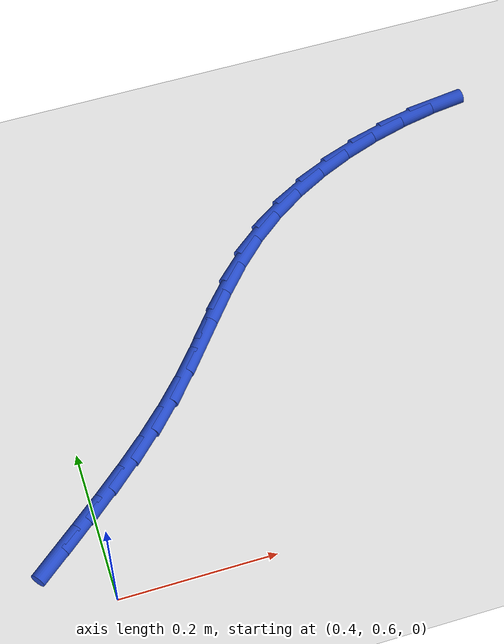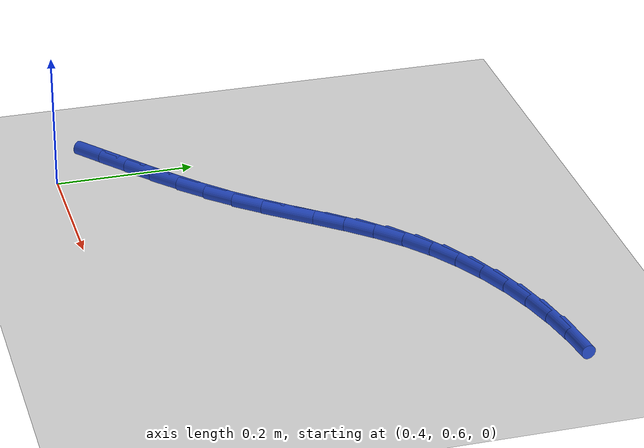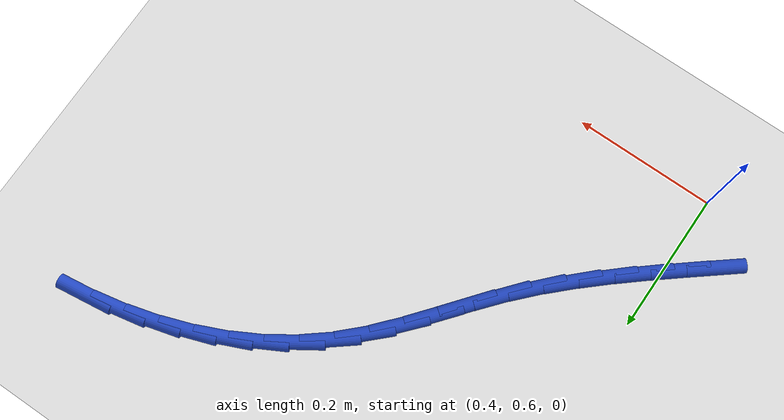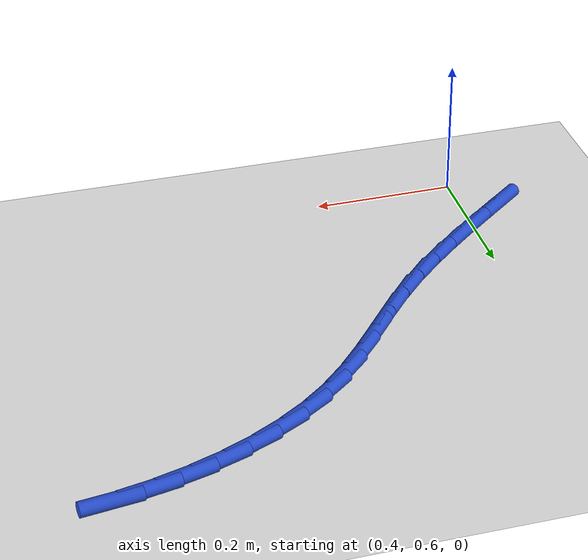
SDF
<sdf version="1.6">
 <world name="default">
  <model name="ground_plane">
   <static>1</static>
   <link name="link">
    <collision name="collision">
     <geometry><plane><normal>0 0 1</normal><size>100 100</size></plane></geometry>
     <surface><friction><ode><mu>100</mu><mu2>50</mu2></ode></friction></surface>
    </collision>
    <visual name="visual">
     <cast_shadows>0</cast_shadows>
     <geometry><plane><normal>0 0 1</normal><size>100 100</size></plane></geometry>
     <material>
      <script><uri>file://media/materials/scripts/gazebo.material</uri><name>Gazebo/WhiteGlow</name></script>
     </material>
    </visual>
   </link>
  </model>
  <model name="line">
   <link name="link_17">
    <pose>0.34552985644391854 0.6722691198165763 0.01 0 1.57 0.6773994261593566</pose>
    <collision name="collision">
     <geometry><cylinder><radius>0.01</radius><length>0.08</length></cylinder></geometry>
    </collision>
    <visual name="visual">
     <material>
      <script><name>Gazebo/Blue</name><uri>file://media/materials/scripts/gazebo.material</uri></script>
     </material>
     <geometry><cylinder><radius>0.01</radius><length>0.08</length></cylinder></geometry>
    </visual>
   </link>
   <link name="link_18">
    <pose>0.38276611238709046 0.7022208178290616 0.01 0 1.57 0.6858978935743995</pose>
    <collision name="collision">
     <geometry><cylinder><radius>0.01</radius><length>0.08</length></cylinder></geometry>
    </collision>
    <visual name="visual">
     <material>
      <script><name>Gazebo/Blue</name><uri>file://media/materials/scripts/gazebo.material</uri></script>
     </material>
     <geometry><cylinder><radius>0.01</radius><length>0.08</length></cylinder></geometry>
    </visual>
   </link>
   <link name="link_19">
    <pose>0.41977617609929113 0.7325121840714734 0.01 0 1.57 0.7045431374903761</pose>
    <collision name="collision">
     <geometry><cylinder><radius>0.01</radius><length>0.08</length></cylinder></geometry>
    </collision>
    <visual name="visual">
     <material>
      <script><name>Gazebo/Blue</name><uri>file://media/materials/scripts/gazebo.material</uri></script>
     </material>
     <geometry><cylinder><radius>0.01</radius><length>0.08</length></cylinder></geometry>
    </visual>
   </link>
   <link name="link_20">
    <pose>0.4561547266773468 0.7634370272215902 0.01 0 1.57 0.7335116303648233</pose>
    <collision name="collision">
     <geometry><cylinder><radius>0.01</radius><length>0.08</length></cylinder></geometry>
    </collision>
    <visual name="visual">
     <material>
      <script><name>Gazebo/Blue</name><uri>file://media/materials/scripts/gazebo.material</uri></script>
     </material>
     <geometry><cylinder><radius>0.01</radius><length>0.08</length></cylinder></geometry>
    </visual>
   </link>
   <link name="link_21">
    <pose>0.4914964432180841 0.7952891559571913 0.01 0 1.57 0.773060365631753</pose>
    <collision name="collision">
     <geometry><cylinder><radius>0.01</radius><length>0.08</length></cylinder></geometry>
    </collision>
    <visual name="visual">
     <material>
      <script><name>Gazebo/Blue</name><uri>file://media/materials/scripts/gazebo.material</uri></script>
     </material>
     <geometry><cylinder><radius>0.01</radius><length>0.08</length></cylinder></geometry>
    </visual>
   </link>
   <link name="link_22">
    <pose>0.5253960048183295 0.8283623789560559 0.01 0 1.57 0.8234040705962363</pose>
    <collision name="collision">
     <geometry><cylinder><radius>0.01</radius><length>0.08</length></cylinder></geometry>
    </collision>
    <visual name="visual">
     <material>
      <script><name>Gazebo/Blue</name><uri>file://media/materials/scripts/gazebo.material</uri></script>
     </material>
     <geometry><cylinder><radius>0.01</radius><length>0.08</length></cylinder></geometry>
    </visual>
   </link>
   <link name="link_23">
    <pose>0.5574492022800209 0.8629495232312983 0.01 0 1.57 0.873608936489605</pose>
    <collision name="collision">
     <geometry><cylinder><radius>0.01</radius><length>0.08</length></cylinder></geometry>
    </collision>
    <visual name="visual">
     <material>
      <script><name>Gazebo/Blue</name><uri>file://media/materials/scripts/gazebo.material</uri></script>
     </material>
     <geometry><cylinder><radius>0.01</radius><length>0.08</length></cylinder></geometry>
    </visual>
   </link>
   <link name="link_24">
    <pose>0.5876409893200333 0.8989997747724332 0.01 0 1.57 0.8963443819122033</pose>
    <collision name="collision">
     <geometry><cylinder><radius>0.01</radius><length>0.08</length></cylinder></geometry>
    </collision>
    <visual name="visual">
     <material>
      <script><name>Gazebo/Blue</name><uri>file://media/materials/scripts/gazebo.material</uri></script>
     </material>
     <geometry><cylinder><radius>0.01</radius><length>0.08</length></cylinder></geometry>
    </visual>
   </link>
   <link name="link_25">
    <pose>0.6169158458185611 0.9356150328921682 0.01 0 1.57 0.8872708833737211</pose>
    <collision name="collision">
     <geometry><cylinder><radius>0.01</radius><length>0.08</length></cylinder></geometry>
    </collision>
    <visual name="visual">
     <material>
      <script><name>Gazebo/Blue</name><uri>file://media/materials/scripts/gazebo.material</uri></script>
     </material>
     <geometry><cylinder><radius>0.01</radius><length>0.08</length></cylinder></geometry>
    </visual>
   </link>
   <link name="link_26">
    <pose>0.6463635143198141 0.9717689261748429 0.01 0 1.57 0.845834614131423</pose>
    <collision name="collision">
     <geometry><cylinder><radius>0.01</radius><length>0.08</length></cylinder></geometry>
    </collision>
    <visual name="visual">
     <material>
      <script><name>Gazebo/Blue</name><uri>file://media/materials/scripts/gazebo.material</uri></script>
     </material>
     <geometry><cylinder><radius>0.01</radius><length>0.08</length></cylinder></geometry>
    </visual>
   </link>
   <link name="link_27">
    <pose>0.6770737373680019 1.006435083204797 0.01 0 1.57 0.7714594543512581</pose>
    <collision name="collision">
     <geometry><cylinder><radius>0.01</radius><length>0.08</length></cylinder></geometry>
    </collision>
    <visual name="visual">
     <material>
      <script><name>Gazebo/Blue</name><uri>file://media/materials/scripts/gazebo.material</uri></script>
     </material>
     <geometry><cylinder><radius>0.01</radius><length>0.08</length></cylinder></geometry>
    </visual>
   </link>
   <link name="link_28">
    <pose>0.7101354433165653 1.0385877264404748 0.01 0 1.57 0.6742653255553979</pose>
    <collision name="collision">
     <geometry><cylinder><radius>0.01</radius><length>0.08</length></cylinder></geometry>
    </collision>
    <visual name="visual">
     <material>
      <script><name>Gazebo/Blue</name><uri>file://media/materials/scripts/gazebo.material</uri></script>
     </material>
     <geometry><cylinder><radius>0.01</radius><length>0.08</length></cylinder></geometry>
    </visual>
   </link>
   <link name="link_29">
    <pose>0.7462712961701522 1.0674682330670155 0.01 0 1.57 0.5798626314763252</pose>
    <collision name="collision">
     <geometry><cylinder><radius>0.01</radius><length>0.08</length></cylinder></geometry>
    </collision>
    <visual name="visual">
     <material>
      <script><name>Gazebo/Blue</name><uri>file://media/materials/scripts/gazebo.material</uri></script>
     </material>
     <geometry><cylinder><radius>0.01</radius><length>0.08</length></cylinder></geometry>
    </visual>
   </link>
   <link name="link_30">
    <pose>0.7852612720232829 1.0930055807193944 0.01 0 1.57 0.492067666545524</pose>
    <collision name="collision">
     <geometry><cylinder><radius>0.01</radius><length>0.08</length></cylinder></geometry>
    </collision>
    <visual name="visual">
     <material>
      <script><name>Gazebo/Blue</name><uri>file://media/materials/scripts/gazebo.material</uri></script>
     </material>
     <geometry><cylinder><radius>0.01</radius><length>0.08</length></cylinder></geometry>
    </visual>
   </link>
   <link name="link_31">
    <pose>0.8267357604268825 1.1152378560744651 0.01 0 1.57 0.41038548225211213</pose>
    <collision name="collision">
     <geometry><cylinder><radius>0.01</radius><length>0.08</length></cylinder></geometry>
    </collision>
    <visual name="visual">
     <material>
      <script><name>Gazebo/Blue</name><uri>file://media/materials/scripts/gazebo.material</uri></script>
     </material>
     <geometry><cylinder><radius>0.01</radius><length>0.08</length></cylinder></geometry>
    </visual>
   </link>
   <link name="link_32">
    <pose>0.8703251509318759 1.1342031458090827 0.01 0 1.57 0.33410319359552026</pose>
    <collision name="collision">
     <geometry><cylinder><radius>0.01</radius><length>0.08</length></cylinder></geometry>
    </collision>
    <visual name="visual">
     <material>
      <script><name>Gazebo/Blue</name><uri>file://media/materials/scripts/gazebo.material</uri></script>
     </material>
     <geometry><cylinder><radius>0.01</radius><length>0.08</length></cylinder></geometry>
    </visual>
   </link>
   <link name="link_33">
    <pose>0.9156598330891887 1.1499395366001002 0.01 0 1.57 0.2623900255819134</pose>
    <collision name="collision">
     <geometry><cylinder><radius>0.01</radius><length>0.08</length></cylinder></geometry>
    </collision>
    <visual name="visual">
     <material>
      <script><name>Gazebo/Blue</name><uri>file://media/materials/scripts/gazebo.material</uri></script>
     </material>
     <geometry><cylinder><radius>0.01</radius><length>0.08</length></cylinder></geometry>
    </visual>
   </link>
   <link name="link_34">
    <pose>0.9623701964497462 1.1624851151243727 0.01 0 1.57 0.1943623223673569</pose>
    <collision name="collision">
     <geometry><cylinder><radius>0.01</radius><length>0.08</length></cylinder></geometry>
    </collision>
    <visual name="visual">
     <material>
      <script><name>Gazebo/Blue</name><uri>file://media/materials/scripts/gazebo.material</uri></script>
     </material>
     <geometry><cylinder><radius>0.01</radius><length>0.08</length></cylinder></geometry>
    </visual>
   </link>
   <link name="link_35">
    <pose>1.0100866305644736 1.1718779680587539 0.01 0 1.57 0.12911916920360797</pose>
    <collision name="collision">
     <geometry><cylinder><radius>0.01</radius><length>0.08</length></cylinder></geometry>
    </collision>
    <visual name="visual">
     <material>
      <script><name>Gazebo/Blue</name><uri>file://media/materials/scripts/gazebo.material</uri></script>
     </material>
     <geometry><cylinder><radius>0.01</radius><length>0.08</length></cylinder></geometry>
    </visual>
   </link>
  </model>
 </world>
</sdf>
